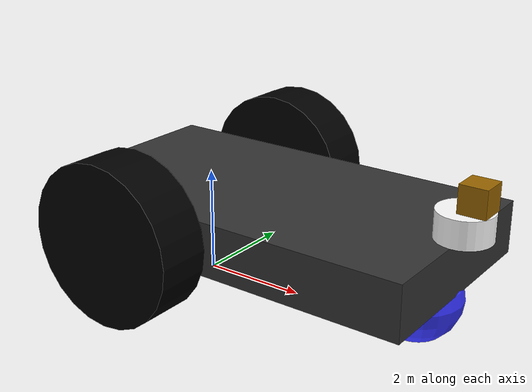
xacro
<?xml version="1.0" ?>
<robot name="Jeevan" xmlns:xacro="http://ros.org/wiki/xacro">

  <!-- Base -->
  <link name="base_footprint">
    <visual>
      <origin xyz="0. 0.0 0.15" rpy="0.0 0.0 0.0"/>
      <geometry>
          <box size="0.05 0.05 0.05"/>
      </geometry>
    </visual>
  </link>

  <joint name="base_joint" type="fixed">
    <parent link="base_footprint"/>
    <child link="base_link"/>
    <origin xyz="1.5 0.0 01.5" rpy="0.0 0.0 0.0"/>
  </joint>

  <link name="base_link"><!-- Chassi Joint -->
    <visual>
      <origin xyz="0.0 0.0 0.0" rpy="0.0 0.0 0.0"/>
      <geometry>
          <box size="07.5 04 01"/>
      </geometry>
      <material name="gray"> <!-- CHASSI -->
        <color rgba=".2 .2 .2 1" />
      </material>
    </visual>

    <collision>
      <origin xyz="0.0 0.0 0.0" rpy="0.0 0.0 0.0"/>
      <geometry>
        <box size="07.5 04 01"/>
      </geometry>
    </collision>

    <inertial>
      <mass value="1" />
      <inertia ixx="0.01" ixy="0.0" ixz="0"
      iyy="0.01" iyz="0" izz="0.01" />
    </inertial>

  </link>

  <link name="wheel_right_link">
    <inertial>
            <mass value="1" />
            <inertia ixx="0.01" ixy="0.0" ixz="0"
            iyy="0.01" iyz="0" izz="0.01" />
    </inertial>

    <visual>
      <origin xyz="0.0 0.0 0.0" rpy="0.0 0.0 0.0"/>
      <geometry>
          <cylinder radius="01.5" length="1"/>
      </geometry>
      <material name="black"> <!-- WHEELS -->
        <color rgba = "0 0 0 1"/>
      </material>
    </visual>

    <collision>
      <origin xyz="0. 0.0 0.0" rpy="0.0 0.0 0.0"/>
      <geometry>
          <cylinder radius="01.5" length="1"/>
      </geometry>
      <surface>
        <friction>
          <ode>
            <mu>0</mu>
            <mu2>0</mu2>
            <slip1>1.0</slip1>
            <slip2>1.0</slip2>
          </ode>
        </friction>
      </surface>
      <contact_coefficients mu="1" kp="1e+13" kd="1.0"/>
    </collision>
  </link>

  <joint name="wheel_right_joint" type="continuous">
    <parent link="base_footprint"/>
    <child link="wheel_right_link"/>
    <origin xyz="0 -02.5 01.5" rpy="-1.57 0.0 0.0"/>
    <axis xyz="0.0 0.0 1.0"/>
  </joint>

  <link name="wheel_left_link">
    <inertial>
            <mass value="2" />
            <inertia ixx="0.01" ixy="0.0" ixz="0"
            iyy="0.01" iyz="0" izz="0.01" />
    </inertial>

    <visual>
      <origin xyz="0.0 0.0 0.0" rpy="0.0 0.0 0.0"/>
      <geometry>
          <cylinder radius="1.5" length="1"/>
      </geometry>
      <material name="black"> <!-- WHEELS -->
        <color rgba = "0 0 0 1"/>
      </material>
    </visual>

    <collision>
      <origin xyz="0.0 0.0 0.0" rpy="0.0 0.0 0.0"/>
      <geometry>
        <cylinder radius="1.5" length="1"/>
      </geometry>
      <surface>
        <friction>
          <ode>
            <mu>0</mu>
            <mu2>0</mu2>
            <slip1>1.0</slip1>
            <slip2>1.0</slip2>
          </ode>
        </friction>
      </surface>
      <contact_coefficients mu="1" kp="1e+13" kd="1.0"/>
    </collision>
  </link>

  <joint name="wheel_left_joint" type="continuous">
    <origin xyz="0. 02.5 01.5" rpy="-1.57 0.0 0.0"/>
    <parent link="base_footprint"/>
    <child link="wheel_left_link"/>
    <axis xyz="0.0 0.0 1.0"/>
  </joint>

  <link name="caster">
    <inertial>
            <mass value="1" />
            <inertia ixx="0.01" ixy="0.0" ixz="0"
            iyy="0.01" iyz="0" izz="0.01" />
    </inertial>

    <visual>
      <origin xyz="0.0 0.0 0.0" rpy="0.0 0.0 0.0"/>
      <geometry>
        <sphere radius="0.81" />
      </geometry>
      <material name = "blue"> <!-- CASTER -->
        <color rgba = "0.2 0.2 1 1"/>
      </material>
    </visual>

    <collision>
      <origin xyz="0.0 0.0 0.0" rpy="0.0 0.0 0.0"/>
      <geometry>
        <sphere radius="0.81" />
      </geometry>
      <surface>
        <friction>
          <ode>
            <mu>0</mu>
            <mu2>0</mu2>
            <slip1>1.0</slip1>
            <slip2>1.0</slip2>
          </ode>
        </friction>
      </surface>
      <contact_coefficients mu="1" kp="1e+13" kd="1.0"/>
    </collision>
  </link>

  <joint name="caster_joint" type="continuous">
    <origin xyz="04.5 0.0 0.76" rpy="0.0 0.0 0.0"/>
    <axis xyz="0 0 1" />
    <parent link="base_footprint"/>
    <child link="caster"/>
  </joint>

  <!-- laser -->
  <link name="laser">
    <inertial>
            <mass value="1" />
            <inertia ixx="0.01" ixy="0.0" ixz="0"
            iyy="0.01" iyz="0" izz="0.01" />
    </inertial>

    <visual>
      <geometry>
        <cylinder radius="0.5" length="0.5"/>
      </geometry>
      <material name="white"> <!-- CAMERA -->
        <color rgba = "1 1 1 1"/>
      </material>
    </visual>

    <collision>
      <origin/>
      <geometry>
        <sphere radius=".8" />
      </geometry>
    </collision>
  </link>

  <joint name="laser_joint" type="fixed">
    <origin xyz="5.25 0.0 02.25" rpy="0.0 0.0 0.0"/>
    <axis xyz="0 0 1" />
    <parent link="base_footprint"/>
    <child link="laser"/>
  </joint>

  <!-- Gazebo colors to links as upper defined colors are only visible in RVIZ-->
  <gazebo>
  <material name="white"> <color rgba = "1 1 1 1"/> </material>
  </gazebo>

  <material name="gray"> <color rgba=".2 .2 .2 1"/> </material>

  <gazebo>
  <material name="black"> <color rgba = "0 0 0 1"/> </material>
  </gazebo>
  <gazebo>
  <material name="black"> <color rgba = "0 0 0 1"/> </material>
  </gazebo>
  <gazebo>
  <material name="blue"> <color rgba = "0.2 0.2 1 1"/> </material>
  </gazebo>
  <gazebo>
  <material name = "brown"> <color rgba = "0.6 0.4 0 1"/> </material>
  </gazebo>
  <!-- DIFFENERNTIAL DRIVEEEEEEEEEEEEE -->
  <gazebo>
    <plugin name="gazebo_ros_control" filename="libgazebo_ros_control.so">
      <robotNamespace>/</robotNamespace>
      <controlPeriod>0.001</controlPeriod>
      <legacyModelNS>false</legacyModelNS>
    </plugin>
  </gazebo>

  <gazebo>
    <plugin name="differential_drive_controller" filename="libgazebo_ros_diff_drive.so">
      <legacyMode>false</legacyMode>
      <alwaysOn>true</alwaysOn>
      <updateRate>10.0</updateRate>
      <leftJoint>wheel_left_joint</leftJoint>
      <rightJoint>wheel_right_joint</rightJoint>
      <wheelSeparation>0.5</wheelSeparation>
      <wheelDiameter>0.3</wheelDiameter>
      <wheelTorque>100</wheelTorque>
      <publishTf>1</publishTf>
      <odometryFrame>odom</odometryFrame>
      <commandTopic>cmd_vel</commandTopic>
      <odometryTopic>odom</odometryTopic>
      <publishOdomTF>true</publishOdomTF>
      <robotBaseFrame>base_footprint</robotBaseFrame>
      <wheelAcceleration>5</wheelAcceleration>
      <publishWheelJointState>false</publishWheelJointState>
      <publishWheelTF>true</publishWheelTF>
      <odometrySource>odom</odometrySource>
      <rosDebugLevel>Debug</rosDebugLevel>
    </plugin>
  </gazebo>

  <gazebo>
    <plugin name="joint_state_publisher" filename="libgazebo_ros_joint_state_publisher.so">
      <jointName>caster_joint</jointName>
      <updateRate>10</updateRate>
    </plugin>
  </gazebo>

  <!-- laser plugin -->
  <gazebo reference="laser">
    <sensor type="ray" name="Lidar">
      <always_on>true</always_on>
      <pose>0 0 0 0 0 0</pose>
      <visualize>true</visualize>
      <update_rate>10</update_rate>
      <ray>
          <scan>
              <horizontal>
                  <samples>720</samples>
                  <resolution>1</resolution>
                  <min_angle>-1.57</min_angle>
                  <max_angle>1.57</max_angle>
              </horizontal>
          </scan>
          <range>
              <min>0.1</min>
              <max>50</max>
              <resolution>0.1</resolution>
          </range>
      </ray>
      <plugin name="laser" filename="libgazebo_ros_laser.so">
          <topicName>/scan</topicName>
          <frameName>laser</frameName>
      </plugin>
    </sensor>
  </gazebo>

  <!-- Camera-->
  <link name="camera_link">
    <inertia>
        <mass value = "0.05"/>
        <inertia ixx="0.1" ixy="0.0" ixz="0.0" iyy="0.1" iyz="0.0" izz="0.1"/>
    </inertia>
    <visual>

        <geometry>
          <box size="0.5 0.5 0.5"/>
        </geometry>
        <material name = "brown"> <!-- LiDAR-->
          <color rgba = "0.6 0.4 0 1"/>
        </material>
    </visual>
    <collision>
        <origin xyz="0.0 0.0 0.0" rpy="0.0 0.0 0.0"/>

        <geometry>
            <box size="0.5 0.5 0.5"/>
        </geometry>
    </collision>
  </link>

  <joint name="camera_joint" type="fixed">
    <axis xyz="0.0 0.0 0.0"/>
    <parent link="base_footprint"/>
    <child link="camera_link"/>
    <origin xyz="05.45 0 02.75" rpy="0 0 0"/>
  </joint>

  <!-- camera -->
  <gazebo reference="camera_link">
    <sensor type="camera" name="camera1">
      <update_rate>10.0</update_rate>
      <camera name="head">
        <horizontal_fov>1.3962634</horizontal_fov>
        <image>
          <width>720</width>
          <height>720</height>
          <format>R8G8B8</format>
        </image>
        <clip>
          <near>0.02</near>
          <far>300</far>
        </clip>
        <noise>
          <type>gaussian</type>
          <!-- Noise is sampled independently per pixel on each frame.
              That pixel's noise value is added to each of its color
              channels, which at that point lie in the range [0,1]. -->
          <mean>0.0</mean>
          <stddev>0.000007</stddev>
        </noise>
      </camera>
      <plugin name="camera_controller" filename="libgazebo_ros_camera.so">
        <alwaysOn>true</alwaysOn>
        <updateRate>0.0</updateRate>
        <cameraName>camera1</cameraName>
        <imageTopicName>/image_raw</imageTopicName>
        <cameraInfoTopicName>/camera_info</cameraInfoTopicName>
        <frameName>camera_link</frameName>
        <hackBaseline>0.07</hackBaseline>
        <distortionK1>0.0</distortionK1>
        <distortionK2>0.0</distortionK2>
        <distortionK3>0.0</distortionK3>
        <distortionT1>0.0</distortionT1>
        <distortionT2>0.0</distortionT2>
      </plugin>
    </sensor>
  </gazebo>
</robot>
